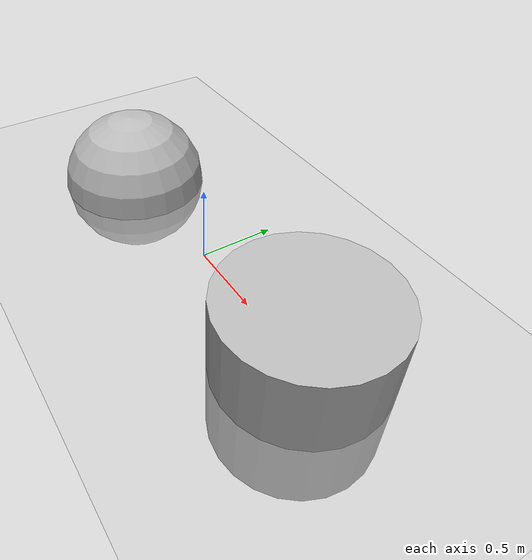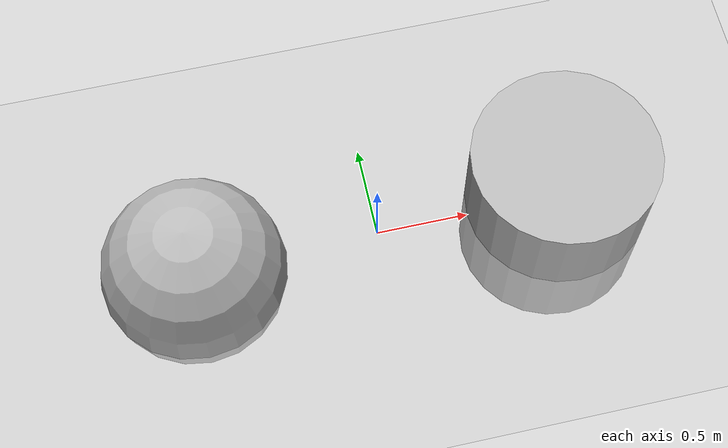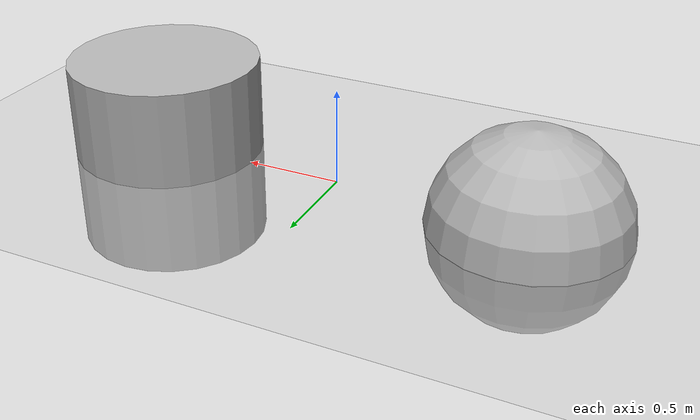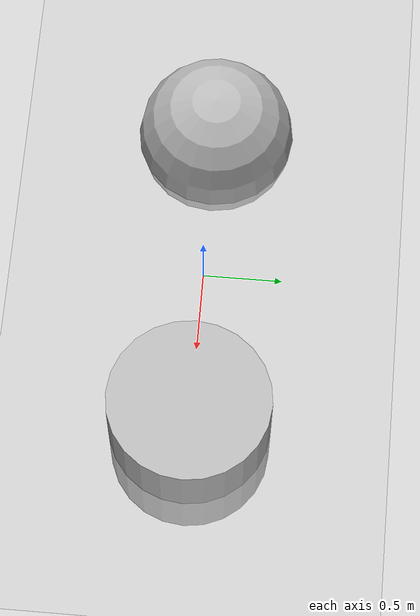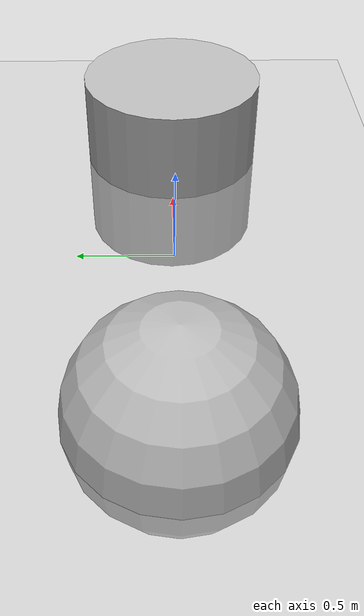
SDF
<?xml version="1.0" ?>
<sdf version='1.6'>
  <world name='default'>
    <!-- A global light source -->
    <include>
      <uri>model://sun</uri>
    </include>
    <!-- A ground plane -->
    <include>
      <uri>model://ground_plane</uri>
    </include>
    <model name='model'>
      <link name='link_1'>
        <pose frame=''>1 0 0 0 0 0</pose>
        <visual name='visual'>
          <geometry>
            <cylinder>
              <radius>0.5</radius>
              <length>1</length>
            </cylinder>
          </geometry>
        </visual>
        <collision name='collision'>
          <geometry>
            <cylinder>
              <radius>0.5</radius>
              <length>1</length>
            </cylinder>
          </geometry>
        </collision>
      </link>
      <link name='link_2'>
        <pose frame=''>-1 0 0 0 0 0</pose>
        <visual name='visual'>
          <geometry>
            <sphere>
              <radius>0.5</radius>
            </sphere>
          </geometry>
        </visual>
        <collision name='collision'>
          <geometry>
            <sphere>
              <radius>0.5</radius>
            </sphere>
          </geometry>
        </collision>
      </link>
      <joint name='joint' type='universal'>
        <parent>link_1</parent>
        <child>link_2</child>
        <axis>
          <xyz>1 0 0</xyz>
        </axis>
        <axis2>
          <xyz>0 1 0</xyz>
        </axis2>
      </joint>
    </model>
  </world>
</sdf>
